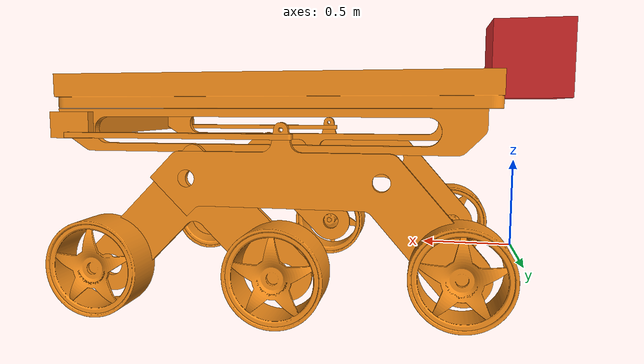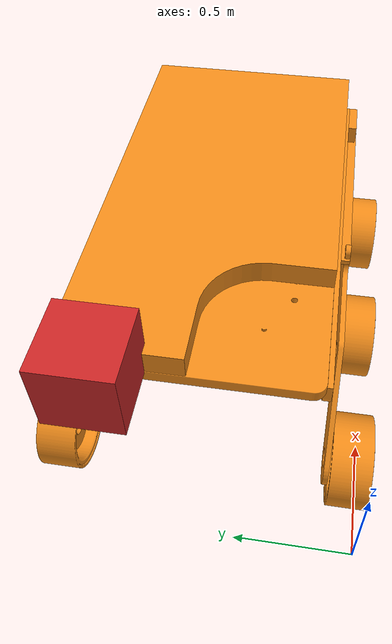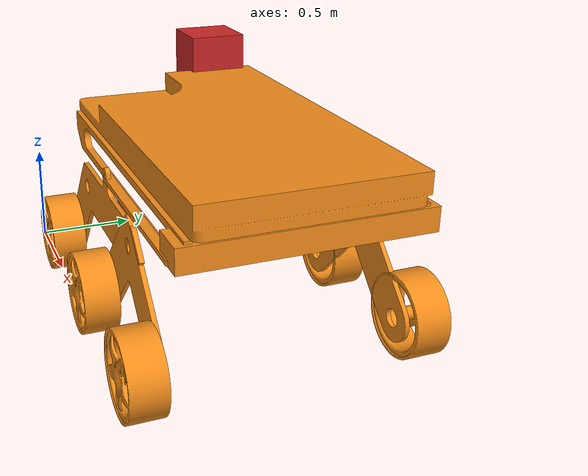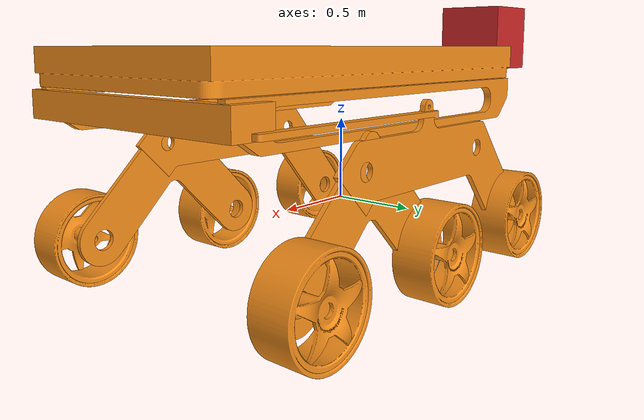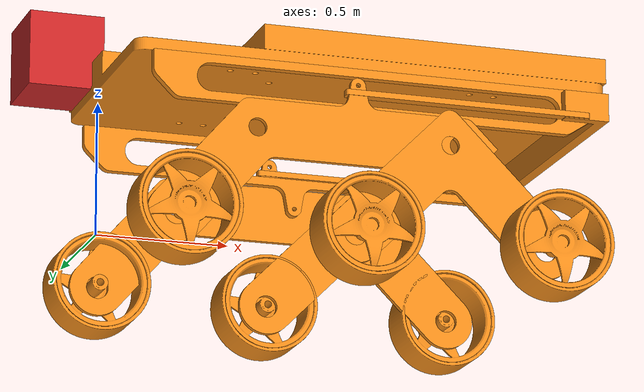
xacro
<?xml version="1.0"?>
<robot xmlns:xacro="http://www.ros.org/wiki/xacro" name="rover">
    <xacro:property name="PI" value="3.14159"/>
    <xacro:property name="effort" value="1000"/>
    <xacro:property name="velocity" value="1000"/>
    <xacro:property name="friction" value="1.0"/>
    <xacro:property name="damping" value="1.0"/>
    <xacro:property name="mu1" value="0.2"/>
    <xacro:property name="mu2" value="0.2"/>

    <xacro:macro name="inertia_wheel">
        <inertial>
            <origin xyz="0 0 0" rpy="0 0 0"/>
            <mass value="3"/>
            <inertia ixx="1" ixy="0" ixz="0" iyy="1" iyz="0" izz="1"/>
        </inertial>

    </xacro:macro>
    <xacro:macro name="base_plate">
        <inertial>
            <origin xyz="0 0 0" rpy="0 0 0"/>
            <mass value="20"/>
            <inertia ixx="1" ixy="0" ixz="0" iyy="1" iyz="0" izz="1"/>
        </inertial>

    </xacro:macro>
    <xacro:macro name="rocker">
        <inertial>
            <origin xyz="0 0 0" rpy="0 0 0"/>
            <mass value="10"/>
            <inertia ixx="1" ixy="0" ixz="0" iyy="1" iyz="0" izz="1"/>
        </inertial>

    </xacro:macro>
    <xacro:macro name="bogie">
        <inertial>
            <origin xyz="0 0 0" rpy="0 0 0"/>
            <mass value="9"/>
            <inertia ixx="1" ixy="0" ixz="0" iyy="1" iyz="0" izz="1"/>
        </inertial>

    </xacro:macro>
    <xacro:macro name="tierod">
        <inertial>
            <origin xyz="0 0 0" rpy="0 0 0"/>
            <mass value="9"/>
            <inertia ixx="1" ixy="0" ixz="0" iyy="1" iyz="0" izz="1"/>
        </inertial>

    </xacro:macro>
    <xacro:macro name="slot">
        <inertial>
            <origin xyz="0 0 0" rpy="0 0 0"/>
            <mass value="9"/>
            <inertia ixx="1" ixy="0" ixz="0" iyy="1" iyz="0" izz="1"/>
        </inertial>

    </xacro:macro>
    <xacro:macro name="bar">
        <inertial>
            <origin xyz="0 0 0" rpy="0 0 0"/>
            <mass value="9"/>
            <inertia ixx="1" ixy="0" ixz="0" iyy="1" iyz="0" izz="1"/>
        </inertial>

    </xacro:macro>

    <link name="dummy"/>
    <joint name="dummy_joint" type="fixed">
        <parent link="dummy"/>
        <child link="base_link"/>

    </joint>

    <link name="base_link">

        <visual>
            <origin xyz="0.2 0.2 0.8" rpy="0 0 0"/>
            <geometry>
                <mesh filename="package://rover_description/meshes/Plate.STL" scale="0.01 0.01 0.01"/>

            </geometry>
        </visual>
        <collision>
            <origin xyz="0.2 0.2 0.8" rpy="0 0 0"/>
            <geometry>
                <mesh filename="package://rover_description/meshes/Plate.STL" scale="0.01 0.01 0.01"/>

            </geometry>

        </collision>
        <xacro:base_plate/>

    </link>

    <link name="slot_right">

        <visual>
            <origin xyz="-1.84 0.01 -0.3" rpy="${PI/2} 0 0"/>
            <geometry>
                <mesh filename="package://rover_description/meshes2/platform.STL" scale="0.0045 0.0045 0.0045"/>

            </geometry>
        </visual>
        <collision>
            <origin xyz="-1.84 0.01 -0.3" rpy="${PI/2} 0 0"/>
            <geometry>
                <mesh filename="package://rover_description/meshes2/platform.STL" scale="0.0045 0.0045 0.0045"/>

            </geometry>

        </collision>
        <xacro:slot/>

    </link>
    <link name="slot_left">

        <visual>
            <origin xyz="-1.84 -0.01 -0.3" rpy="${PI/2} 0 0"/>
            <geometry>
                <mesh filename="package://rover_description/meshes2/platform.STL" scale="0.0045 0.0045 0.0045"/>

            </geometry>
        </visual>
        <collision>
            <origin xyz="-1.84 -0.01 -0.3" rpy="${PI/2} 0 0"/>
            <geometry>
                <mesh filename="package://rover_description/meshes2/platform.STL" scale="0.0045 0.0045 0.0045"/>

            </geometry>

        </collision>
        <xacro:slot/>

    </link>
    <link name="diff_bar">

        <visual>
            <origin xyz="0.13 0.43 -0.9" rpy="${PI/2} -${PI/2} 0"/>
            <geometry>
                <mesh filename="package://rover_description/meshes2/differential.STL" scale="0.0045 0.0045 0.0045"/>

            </geometry>
        </visual>
        <collision>
            <origin xyz="0.13 0.43 -0.9" rpy="${PI/2} -${PI/2} 0"/>
            <geometry>
                <mesh filename="package://rover_description/meshes2/differential.STL" scale="0.0045 0.0045 0.0045"/>

            </geometry>

        </collision>
        <xacro:bar/>

    </link>
    <link name="tierod_right">

        <visual>
            <origin xyz="0 -0.05 0" rpy="0 -${PI} 0"/>
            <geometry>
                <mesh filename="package://rover_description/meshes2/tierod.STL" scale="0.0045 0.0045 0.0045"/>

            </geometry>
        </visual>
        <collision>
            <origin xyz="0 -0.05 0" rpy="0 -${PI} 0"/>
            <geometry>
                <mesh filename="package://rover_description/meshes2/tierod.STL" scale="0.0045 0.0045 0.0045"/>

            </geometry>

        </collision>
        <xacro:tierod/>

    </link>
    <link name="tierod_left">

        <visual>
            <origin xyz="0 0 0" rpy="0 -${PI} 0"/>
            <geometry>
                <mesh filename="package://rover_description/meshes2/tierod.STL" scale="0.0045 0.0045 0.0045"/>

            </geometry>
        </visual>
        <collision>
            <origin xyz="0 0 0" rpy="0 -${PI} 0"/>
            <geometry>
                <mesh filename="package://rover_description/meshes2/tierod.STL" scale="0.0045 0.0045 0.0045"/>

            </geometry>

        </collision>
        <xacro:tierod/>

    </link>
    <link name="rocker_right">

        <visual>
            <origin xyz="2.0 0 -0.66" rpy="${PI/2} 0 ${PI}"/>
            <geometry>
                <mesh filename="package://rover_description/meshes2/rocker.STL" scale="0.0045 0.0045 0.0045"/>

            </geometry>
        </visual>
        <collision>
            <origin xyz="2.0 0 -0.66" rpy="${PI/2} 0 ${PI}"/>
            <geometry>
                <mesh filename="package://rover_description/meshes2/rocker.STL" scale="0.0045 0.0045 0.0045"/>

            </geometry>

        </collision>
        <xacro:rocker/>

    </link>
    <link name="rocker_left">

        <visual>
            <origin xyz="2.0 0.05 -0.66" rpy="${PI/2} 0 ${PI}"/>
            <geometry>
                <mesh filename="package://rover_description/meshes2/rocker.STL" scale="0.0045 0.0045 0.0045"/>

            </geometry>
        </visual>
        <collision>
            <origin xyz="2.0 0.05 -0.66" rpy="${PI/2} 0 ${PI}"/>
            <geometry>
                <mesh filename="package://rover_description/meshes2/rocker.STL" scale="0.0045 0.0045 0.0045"/>

            </geometry>

        </collision>
        <xacro:rocker/>

    </link>
    <link name="bogie_right">

        <visual>
            <origin xyz="0.45 0 -0.48" rpy="${PI/2} 0 ${PI}"/>
            <geometry>
                <mesh filename="package://rover_description/meshes2/bogie.STL" scale="0.0045 0.0045 0.0045"/>

            </geometry>
        </visual>
        <collision>
            <origin xyz="0.45 0 -0.48" rpy="${PI/2} 0 ${PI}"/>
            <geometry>
                <mesh filename="package://rover_description/meshes2/bogie.STL" scale="0.0045 0.0045 0.0045"/>

            </geometry>

        </collision>
        <xacro:bogie/>

    </link>
    <link name="bogie_left">

        <visual>
            <origin xyz="0.45 0 -0.48" rpy="${PI/2} 0 ${PI}"/>
            <geometry>
                <mesh filename="package://rover_description/meshes2/bogie.STL" scale="0.0045 0.0045 0.0045"/>

            </geometry>
        </visual>
        <collision>
            <origin xyz="0.45 0 -0.48" rpy="${PI/2} 0 ${PI}"/>
            <geometry>
                <mesh filename="package://rover_description/meshes2/bogie.STL" scale="0.0045 0.0045 0.0045"/>

            </geometry>

        </collision>
        <xacro:bogie/>

    </link>
    <link name="wheel1">

        <visual>
            <origin xyz="-0.2 0 -0.2" rpy="${PI/2} 0 0"/>
            <geometry>
                <mesh filename="package://rover_description/meshes/Wheel.STL" scale="0.01 0.01 0.01"/>

            </geometry>
        </visual>
        <collision>
            <origin xyz="-0.2 0 -0.2" rpy="${PI/2} 0 0"/>
            <geometry>
                <mesh filename="package://rover_description/meshes/Wheel.STL" scale="0.01 0.01 0.01"/>

            </geometry>

        </collision>
        <xacro:inertia_wheel/>

    </link>
    <link name="wheel2">

        <visual>
            <origin xyz="-0.2 0 -0.2" rpy="${PI/2} 0 0"/>
            <geometry>
                <mesh filename="package://rover_description/meshes/Wheel.STL" scale="0.01 0.01 0.01"/>

            </geometry>
        </visual>
        <collision>
            <origin xyz="-0.2 0 -0.2" rpy="${PI/2} 0 0"/>
            <geometry>
                <mesh filename="package://rover_description/meshes/Wheel.STL" scale="0.01 0.01 0.01"/>

            </geometry>

        </collision>
        <xacro:inertia_wheel/>

    </link>
    <link name="wheel3">

        <visual>
            <origin xyz="-0.2 0 -0.2" rpy="${PI/2} 0 0"/>
            <geometry>
                <mesh filename="package://rover_description/meshes/Wheel.STL" scale="0.01 0.01 0.01"/>

            </geometry>
        </visual>
        <collision>
            <origin xyz="-0.2 0 -0.2" rpy="${PI/2} 0 0"/>
            <geometry>
                <mesh filename="package://rover_description/meshes/Wheel.STL" scale="0.01 0.01 0.01"/>

            </geometry>

        </collision>
        <xacro:inertia_wheel/>

    </link>
    <link name="wheel4">

        <visual>
            <origin xyz="-0.2 0 0.22" rpy="-${PI/2} 0 0"/>
            <geometry>
                <mesh filename="package://rover_description/meshes/Wheel.STL" scale="0.01 0.01 0.01"/>

            </geometry>
        </visual>
        <collision>
            <origin xyz="-0.2 0 0.22" rpy="-${PI/2} 0 0"/>
            <geometry>
                <mesh filename="package://rover_description/meshes/Wheel.STL" scale="0.01 0.01 0.01"/>

            </geometry>

        </collision>
        <xacro:inertia_wheel/>

    </link>
    <link name="wheel5">

        <visual>
            <origin xyz="-0.2 0 0.22" rpy="-${PI/2} 0 0"/>
            <geometry>
                <mesh filename="package://rover_description/meshes/Wheel.STL" scale="0.01 0.01 0.01"/>

            </geometry>
        </visual>
        <collision>
            <origin xyz="-0.2 0 0.22" rpy="-${PI/2} 0 0"/>
            <geometry>
                <mesh filename="package://rover_description/meshes/Wheel.STL" scale="0.01 0.01 0.01"/>

            </geometry>

        </collision>
        <xacro:inertia_wheel/>

    </link>
    <link name="wheel6">

        <visual>
            <origin xyz="-0.2 0 0.22" rpy="-${PI/2} 0 0"/>
            <geometry>
                <mesh filename="package://rover_description/meshes/Wheel.STL" scale="0.01 0.01 0.01"/>

            </geometry>
        </visual>
        <collision>
            <origin xyz="-0.2 0 0.22" rpy="-${PI/2} 0 0"/>
            <geometry>
                <mesh filename="package://rover_description/meshes/Wheel.STL" scale="0.01 0.01 0.01"/>

            </geometry>

        </collision>
        <xacro:inertia_wheel/>

    </link>

    <joint name="plate_to_slot_right" type="fixed">
        <parent link="base_link"/>
        <child link="slot_right"/>
        <origin rpy="0 0 0" xyz="1.15 0.2 0.8"/>

    </joint>
    <joint name="plate_to_slot_left" type="fixed">
        <parent link="base_link"/>
        <child link="slot_left"/>
        <origin rpy="0 0 0" xyz="1.15 1.23 0.8"/>

    </joint>
    <joint name="plate_differential" type="fixed">
        <parent link="base_link"/>
        <child link="diff_bar"/>
        <origin rpy="0 0 0" xyz="1.95 0.83 0.8"/>

    </joint>
    <joint name="rod_right" type="fixed">
        <parent link="diff_bar"/>
        <child link="tierod_right"/>
        <origin rpy="0 0 0" xyz="0.05 -0.7 -0.1"/>

    </joint>
    <joint name="rod_left" type="fixed">
        <parent link="diff_bar"/>
        <child link="tierod_left"/>
        <origin rpy="0 0 0" xyz="0.05 0.37 -0.1"/>

    </joint>
    <joint name="rocker_right_link" type="fixed">
        <parent link="tierod_right"/>
        <child link="rocker_right"/>
        <origin rpy="0 0 0" xyz="-0.89 0 0"/>
        <axis xyz="0 1 0"/>
        <limit lower="-${PI/2}" upper="${PI/2}" effort="${effort}" velocity="${velocity}"/>
        <dynamics damping="${damping}" friction="${friction}"/>

    </joint>
    <joint name="rocker_left_link" type="fixed">
        <parent link="tierod_left"/>
        <child link="rocker_left"/>
        <origin rpy="0 0 0" xyz="-0.89 0 0"/>
        <axis xyz="0 1 0"/>
        <limit lower="-${PI/2}" upper="${PI/2}" effort="${effort}" velocity="${velocity}"/>
        <dynamics damping="${damping}" friction="${friction}"/>

    </joint>
    <joint name="rocker_right_to_bogie" type="revolute">
        <parent link="rocker_right"/>
        <child link="bogie_right"/>
        <origin rpy="0 0 0" xyz="0.36 0 -0.2"/>
        <axis xyz="0 1 0"/>
        <limit lower="-${PI/2}" upper="${PI/2}" effort="${effort}" velocity="${velocity}"/>
        <dynamics damping="${damping}" friction="${friction}"/>

    </joint>
    <joint name="rocker_left_to_bogie" type="revolute">
        <parent link="rocker_left"/>
        <child link="bogie_left"/>
        <origin rpy="0 0 0" xyz="0.36 0.05 -0.2"/>
        <axis xyz="0 1 0"/>
        <limit lower="-${PI/2}" upper="${PI/2}" effort="${effort}" velocity="${velocity}"/>
        <dynamics damping="${damping}" friction="${friction}"/>

    </joint>
    <joint name="wheel1_joint" type="continuous">
        <parent link="rocker_right"/>
        <child link="wheel1"/>
        <origin rpy="0 0 0" xyz="-0.76 0 -0.55"/>
        <axis xyz="0 1 0"/>
        <dynamics damping="${damping}" friction="${friction}"/>
        <limit effort="${effort}" velocity="${velocity}"/>

    </joint>
    <joint name="wheel2_joint" type="continuous">
        <parent link="bogie_right"/>
        <child link="wheel2"/>
        <origin rpy="0 0 0" xyz="-0.41 0 -0.37"/>
        <axis xyz="0 1 0"/>
        <dynamics damping="${damping}" friction="${friction}"/>
        <limit effort="${effort}" velocity="${velocity}"/>

    </joint>
    <joint name="wheel3_joint" type="continuous">
        <parent link="bogie_right"/>
        <child link="wheel3"/>
        <origin rpy="0 0 0" xyz="0.35 0 -0.37"/>
        <axis xyz="0 1 0"/>
        <dynamics damping="${damping}" friction="${friction}"/>
        <limit effort="${effort}" velocity="${velocity}"/>

    </joint>
        <joint name="wheel4_joint" type="continuous">
        <parent link="rocker_left"/>
        <child link="wheel4"/>
        <origin rpy="0 0 0" xyz="-0.76 0 -0.55"/>
        <axis xyz="0 1 0"/>
        <dynamics damping="${damping}" friction="${friction}"/>
        <limit effort="${effort}" velocity="${velocity}"/>

    </joint>
    <joint name="wheel5_joint" type="continuous">
        <parent link="bogie_left"/>
        <child link="wheel5"/>
        <origin rpy="0 0 0" xyz="-0.41 0 -0.37"/>
        <axis xyz="0 1 0"/>
        <dynamics damping="${damping}" friction="${friction}"/>
        <limit effort="${effort}" velocity="${velocity}"/>

    </joint>
    <joint name="wheel6_joint" type="continuous">
        <parent link="bogie_left"/>
        <child link="wheel6"/>
        <origin rpy="0 0 0" xyz="0.35 0 -0.37"/>
        <axis xyz="0 1 0"/>
        <dynamics damping="${damping}" friction="${friction}"/>
        <limit effort="${effort}" velocity="${velocity}"/>

    </joint>

    <xacro:include filename="camera.xacro"/>

  <!-- Load the Gazebo ROS control plugin -->
    <gazebo>
    <plugin name="rover_diff_drive_controller" filename="libgazebo_ros_skid_steer_drive.so">
        <updateRate>100</updateRate>
        <leftFrontJoint>wheel4_joint</leftFrontJoint>
        <rightFrontJoint>wheel1_joint</rightFrontJoint>
        <leftRearJoint>wheel6_joint</leftRearJoint>
        <rightRearJoint>wheel3_joint</rightRearJoint>
  <!-- Right middle wheel joint -->
      <wheelSeparation>1.0</wheelSeparation> <!-- Distance between wheels -->
      <wheelDiameter>0.4</wheelDiameter> <!-- Radius of wheels -->
      <publishWheelJointState>true</publishWheelJointState>
      <legacyMode>false</legacyMode>
       <!-- Update rate for the controller -->
        <commandTopic>cmd_vel</commandTopic>
        <odometryTopic>odom</odometryTopic>
        <odometryFrame>odom</odometryFrame>
        <torque>1000</torque>

      <robotBaseFrame>base_link</robotBaseFrame> <!-- Base frame of the rover -->
      <covariance_x>0.0001</covariance_x>
      <covariance_y>0.0001</covariance_y>
      <covariance_yaw>0.01</covariance_yaw>
    </plugin>
    </gazebo>

    <gazebo reference="base_link">
        <material>Gazebo/Orange</material>
        <mu1>${mu1}</mu1>
        <mu2>${mu2}</mu2>
    </gazebo>
    <gazebo reference="slot_right">
        <material>Gazebo/Orange</material>
        <mu1>${mu1}</mu1>
        <mu2>${mu2}</mu2>
    </gazebo>
    <gazebo reference="slot_left">
        <material>Gazebo/Orange</material>
        <mu1>${mu1}</mu1>
        <mu2>${mu2}</mu2>
    </gazebo>
    <gazebo reference="diff_bar">
        <material>Gazebo/Orange</material>
        <mu1>${mu1}</mu1>
        <mu2>${mu2}</mu2>
    </gazebo>
    <gazebo reference="tierod_right">
        <material>Gazebo/Orange</material>
        <mu1>${mu1}</mu1>
        <mu2>${mu2}</mu2>
    </gazebo>
    <gazebo reference="tierod_left">
        <material>Gazebo/Orange</material>
        <mu1>${mu1}</mu1>
        <mu2>${mu2}</mu2>
    </gazebo>
    <gazebo reference="rocker_right">
        <material>Gazebo/Orange</material>
        <mu1>${mu1}</mu1>
        <mu2>${mu2}</mu2>
    </gazebo>
    <gazebo reference="rocker_left">
        <material>Gazebo/Orange</material>
        <mu1>${mu1}</mu1>
        <mu2>${mu2}</mu2>

    </gazebo>
    <gazebo reference="bogie_right">
        <material>Gazebo/Orange</material>
        <mu1>${mu1}</mu1>
        <mu2>${mu2}</mu2>
    </gazebo>
    <gazebo reference="bogie_left">
        <material>Gazebo/Orange</material>
        <mu1>${mu1}</mu1>
        <mu2>${mu2}</mu2>
    </gazebo>
    <gazebo reference="wheel1">
        <material>Gazebo/Orange</material>
        <mu1>${mu1}</mu1>
        <mu2>${mu2}</mu2>
    </gazebo>
    <gazebo reference="wheel2">
        <material>Gazebo/Orange</material>
        <mu1>${mu1}</mu1>
        <mu2>${mu2}</mu2>
    </gazebo>
    <gazebo reference="wheel3">
        <material>Gazebo/Orange</material>
        <mu1>${mu1}</mu1>
        <mu2>${mu2}</mu2>
    </gazebo>
    <gazebo reference="wheel4">
        <material>Gazebo/Orange</material>
        <mu1>${mu1}</mu1>
        <mu2>${mu2}</mu2>
    </gazebo>
    <gazebo reference="wheel5">
        <material>Gazebo/Orange</material>
        <mu1>${mu1}</mu1>
        <mu2>${mu2}</mu2>
    </gazebo>
    <gazebo reference="wheel6">
        <material>Gazebo/Orange</material>
        <mu1>${mu1}</mu1>
        <mu2>${mu2}</mu2>
    </gazebo>

    </robot>

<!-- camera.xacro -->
<robot xmlns:xacro="http://www.ros.org/wiki/xacro" name="rover">

    <joint name="camera_joint" type="fixed">
        <parent link="base_link"/>
        <child link="camera_link"/>
        <origin xyz="0.1 1.00 0.99" rpy="0 0 ${PI}"/>

    </joint>
    <link name="camera_link">

        <visual>
            <origin xyz="0 0 0" rpy="0 0 0"/>
            <geometry>
                <box size="0.3 0.3 0.3"/>

            </geometry>
        </visual>

        <inertial>
            <origin xyz="0 0 0" rpy="0 0 0"/>
            <mass value="1"/>
            <inertia
              ixx="1.0" ixy="0.0" ixz="0.0"
              iyy="1.0" iyz="0.0"
              izz="1.0"/>
        </inertial>

        <collision>
            <origin xyz="0 0 0" rpy="0 0 0"/>
            <geometry>
              <box size="0.3 0.3 0.3"/>
            </geometry>
        </collision>

    </link>
    <joint name="camera_optical_joint" type="fixed">
        <parent link="camera_link"/>
        <child link="camera_link_optical"/>
        <origin xyz="0 0 0" rpy="-${PI/2} 0 -${PI/2}"/>

    </joint>
    <link name="camera_link_optical"/>

    <gazebo reference="camera_link">
        <material>Gazebo/Red</material>

        <sensor type="depth" name="camera">
            <origin xyz="0 0 0" rpy="0 0 0"/>
            <visualize>false</visualize>
            <update_rate>40</update_rate>

              <plugin name="camera_plugin" filename="libgazebo_ros_openni_kinect.so">
                <baseline>0.2</baseline>
                <alwaysOn>true</alwaysOn>
                <updateRate>0.0</updateRate>
                <cameraName>camera_ir</cameraName>
                <robotNamespace>/</robotNamespace>
                <imageTopicName>/camera/depth/image_raw</imageTopicName>
                <cameraInfoTopicName>/camera/depth/camera_info</cameraInfoTopicName>
                <depthImageTopicName>/camera/depth/image_raw</depthImageTopicName>
                <depthImageInfoTopicName>/camera/depth/camera_info</depthImageInfoTopicName>
                <pointCloudTopicName>/camera/depth/points</pointCloudTopicName>
                <frameName>camera_link_optical</frameName>
                <pointCloudCutoff>0.05</pointCloudCutoff>
                <distortionK1>0</distortionK1>
                <distortionK2>0</distortionK2>
                <distortionK3>0</distortionK3>
                <distortionT1>0</distortionT1>
                <distortionT2>0</distortionT2>
                <CxPrime>0</CxPrime>
                <Cx>0</Cx>
                <Cy>0</Cy>
                <focalLength>0</focalLength>
                <hackBaseline>0</hackBaseline>
              </plugin>
          </sensor>
          <static>true</static>

    </gazebo>

</robot>
